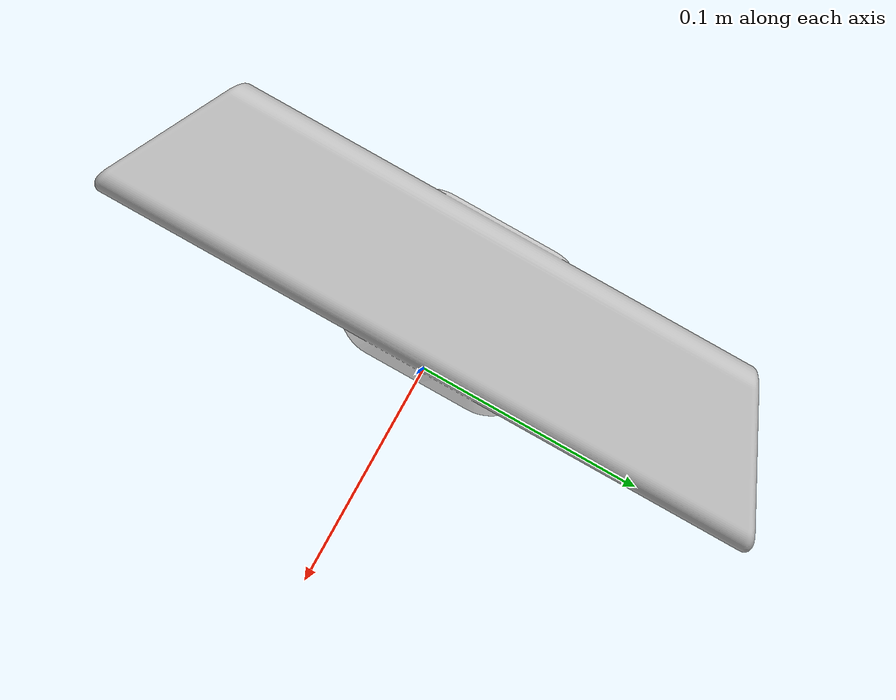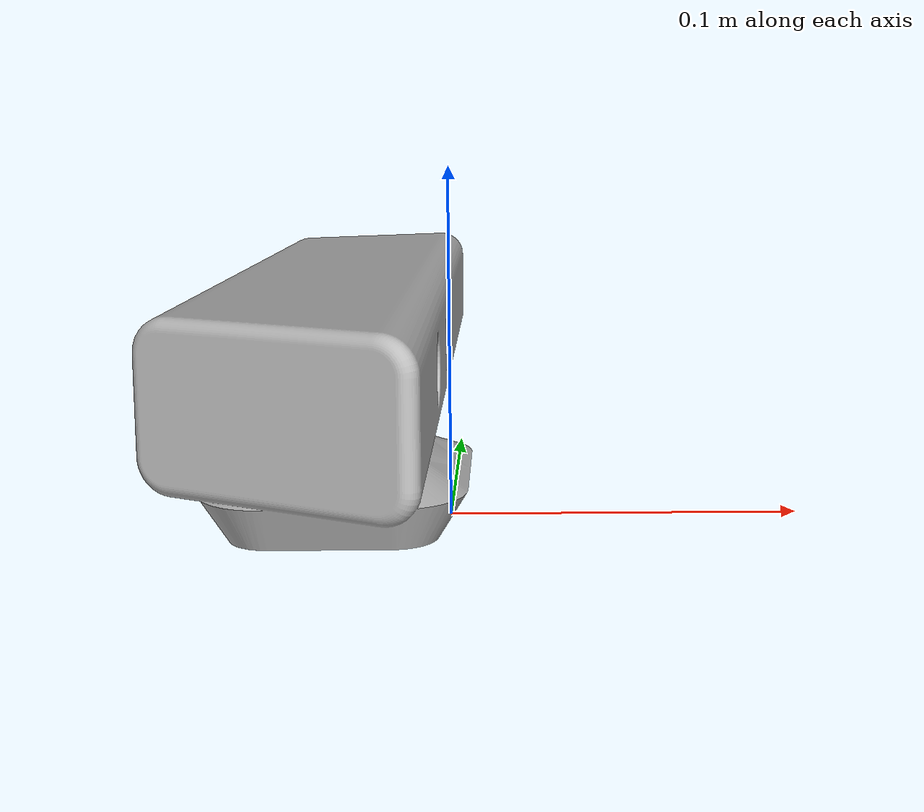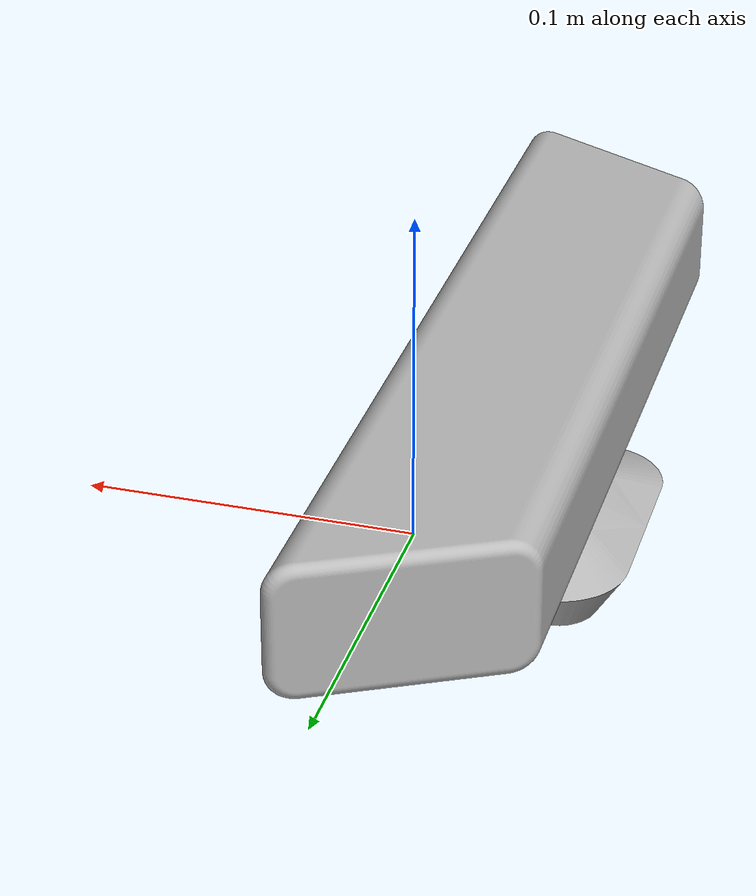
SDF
<?xml version="1.0" ?>
<sdf version="1.5">
	<model name="kinect_1">
		<static>1</static>
		<pose>0 0 0.053 0 0 0</pose>
		<link name="link">
			<inertial>
				<mass>0.1</mass>
			</inertial>
			<collision name="collision">
				<pose>-0.031 0 -0.017 0 0 0</pose>
				<geometry>
					<box>
						<size>0.073 0.276 0.072</size>
					</box>
				</geometry>
			</collision>
			<visual name="visual">
				<transparency>0</transparency>
				<geometry>
					<mesh>
						<uri>model://kinect_1/meshes/kinect_1.dae</uri>
					</mesh>
				</geometry>
			</visual>
			<sensor name="sensor" type="depth">
				<update_rate>30</update_rate>
				<camera>
					<horizontal_fov>1.021018</horizontal_fov>
					<image>
						<width>640</width>
						<height>480</height>
						<format>B8G8R8</format>
					</image>
					<clip>
						<near>0.4</near>
						<far>3.0</far>
					</clip>
				</camera>
			</sensor>
		</link>
	</model>
</sdf>
